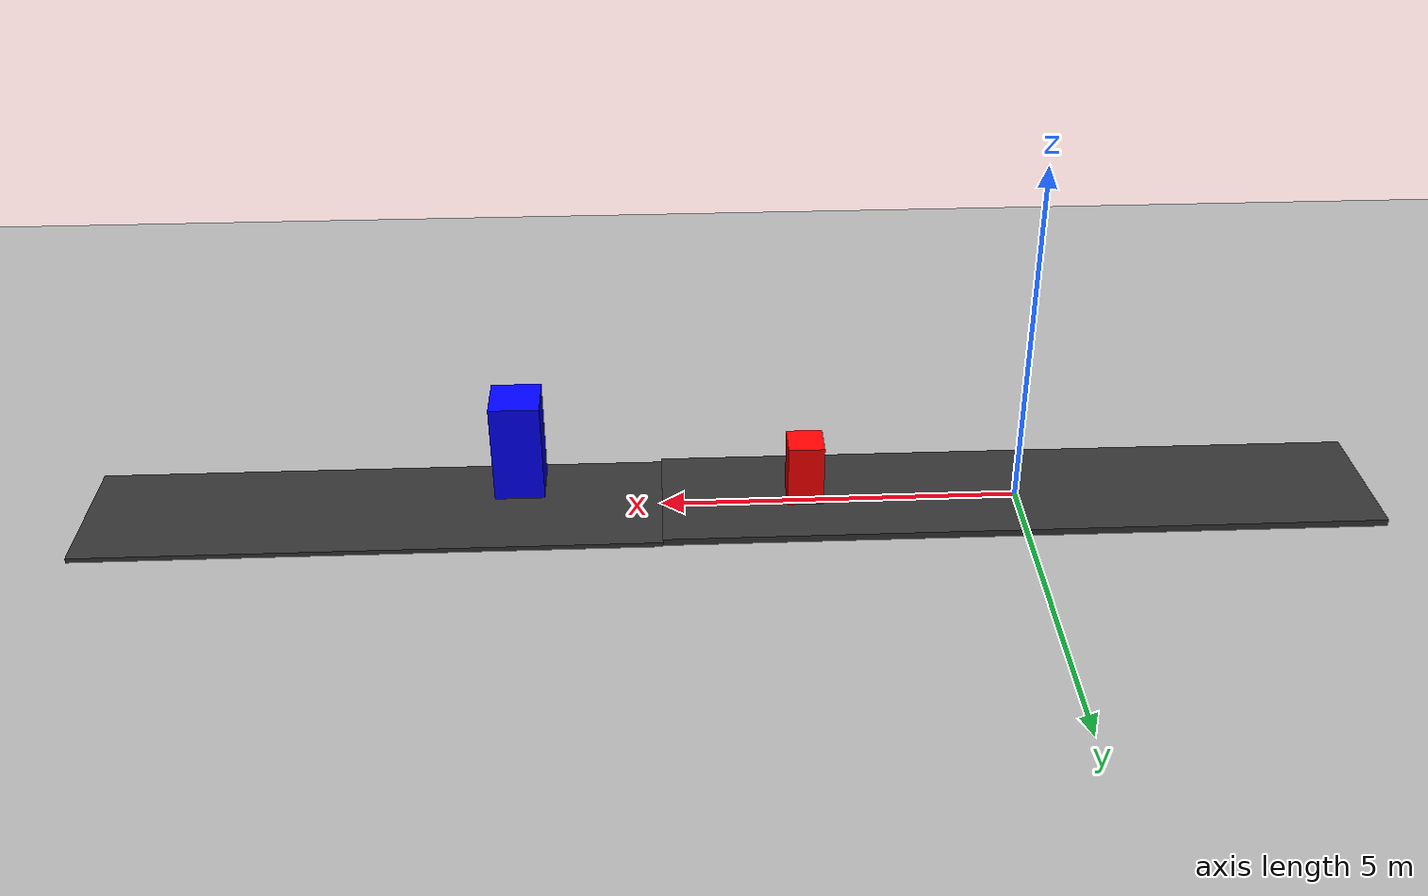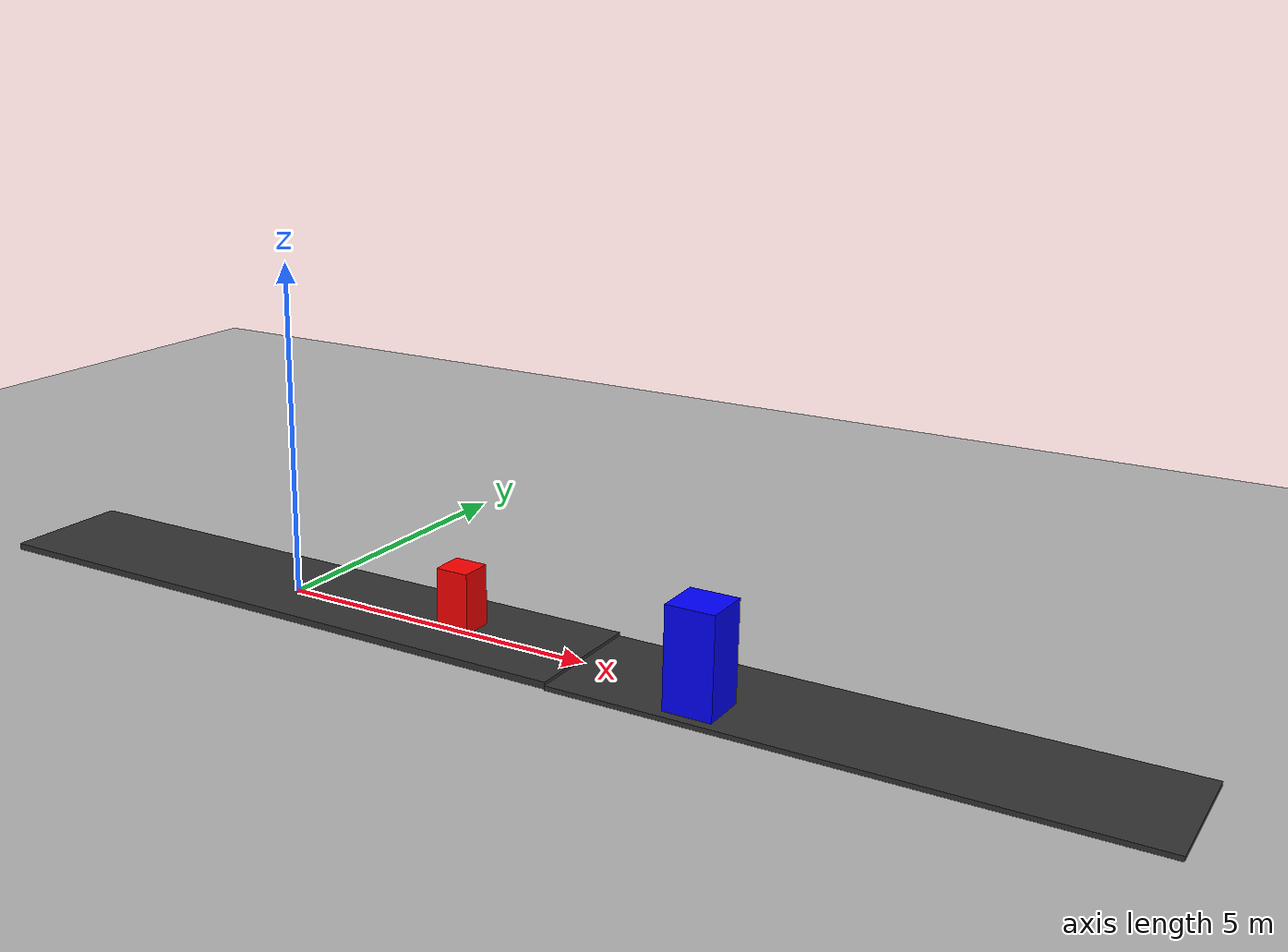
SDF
<?xml version="1.0" ?>
<sdf version="1.9">
  <world name="car_world">

    <physics name="1ms" type="ignored">
      <max_step_size>0.001</max_step_size>
      <real_time_factor>1.0</real_time_factor>
    </physics>
    <plugin
      filename="ignition-gazebo-physics-system"
      name="gz::sim::systems::Physics">
    </plugin>
    <plugin
      filename="ignition-gazebo-sensors-system"
      name="gz::sim::systems::Sensors">
      <render_engine>ogre</render_engine>
    </plugin>
    <plugin
      filename="ignition-gazebo-user-commands-system"
      name="gz::sim::systems::UserCommands">
    </plugin>
    <plugin
      filename="ignition-gazebo-scene-broadcaster-system"
      name="gz::sim::systems::SceneBroadcaster">
    </plugin>
    <plugin
      filename="ignition-gazebo-navsat-system"
      name="ignition::gazebo::systems::NavSat">
    </plugin>

    <light name="sun" type="directional">
      <cast_shadows>true</cast_shadows>
      <pose>0 0 10 0 0 0</pose>
      <diffuse>1 1 1 1</diffuse>
      <specular>0.1 0.1 0.1 1</specular>
      <direction>-0.5 0.5 -1</direction>
    </light>

    <model name="ground_plane">
      <static>true</static>
      <link name="link">
        <collision name="collision">
          <geometry>
            <plane>
              <normal>0 0 1</normal>
              <size>100 100</size>
            </plane>
          </geometry>
        </collision>
        <visual name="visual">
          <geometry>
            <plane>
              <normal>0 0 1</normal>
              <size>100 100</size>
            </plane>
          </geometry>
          <material>
            <ambient>0.7 0.7 0.7 1</ambient>
            <diffuse>0.7 0.7 0.7 1</diffuse>
          </material>
        </visual>
      </link>
    </model>

    <model name="road_path_1">
      <static>true</static>
      <link name="road_link">
        <collision name="road_collision">
          <geometry>
            <box>
              <size>10 2 0.1</size>
            </box>
          </geometry>
        </collision>
        <visual name="road_visual">
          <geometry>
            <box>
              <size>10 2 0.1</size>
            </box>
          </geometry>
          <material>
            <ambient>0.1 0.1 0.1 1</ambient>
            <diffuse>0.2 0.2 0.2 1</diffuse>
          </material>
        </visual>
      </link>
      <pose>0 0 0.05 0 0 0</pose>
    </model>

    <model name="road_path_2">
      <static>true</static>
      <link name="road_link_2">
        <collision name="road_collision_2">
          <geometry>
            <box>
              <size>8 2 0.1</size>
            </box>
          </geometry>
        </collision>
        <visual name="road_visual_2">
          <geometry>
            <box>
              <size>8 2 0.1</size>
            </box>
          </geometry>
          <material>
            <ambient>0.1 0.1 0.1 1</ambient>
            <diffuse>0.2 0.2 0.2 1</diffuse>
          </material>
        </visual>
      </link>
      <pose>9 0 0.0 0 0 0</pose>
    </model>

    <model name="obstacle_1">
      <static>true</static>
      <link name="link_1">
        <collision name="collision_1">
          <geometry>
            <box>
              <size>0.5 0.5 1</size>
            </box>
          </geometry>
        </collision>
        <visual name="visual_1">
          <geometry>
            <box>
              <size>0.5 0.5 1</size>
            </box>
          </geometry>
          <material>
            <ambient>1 0 0 1</ambient>
            <diffuse>1 0 0 1</diffuse>
          </material>
        </visual>
      </link>
      <pose>3 0 0.5 0 0 0</pose>
    </model>

    <model name="obstacle_2">
      <static>true</static>
      <link name="link_2">
        <collision name="collision_2">
          <geometry>
            <box>
              <size>0.7 0.7 1.5</size>
            </box>
          </geometry>
        </collision>
        <visual name="visual_2">
          <geometry>
            <box>
              <size>0.7 0.7 1.5</size>
            </box>
          </geometry>
          <material>
            <ambient>0 0 1 1</ambient>
            <diffuse>0 0 1 1</diffuse>
          </material>
        </visual>
      </link>
      <pose>7 -0.5 0.75 0 0 0</pose>
    </model>

  </world>
</sdf>
